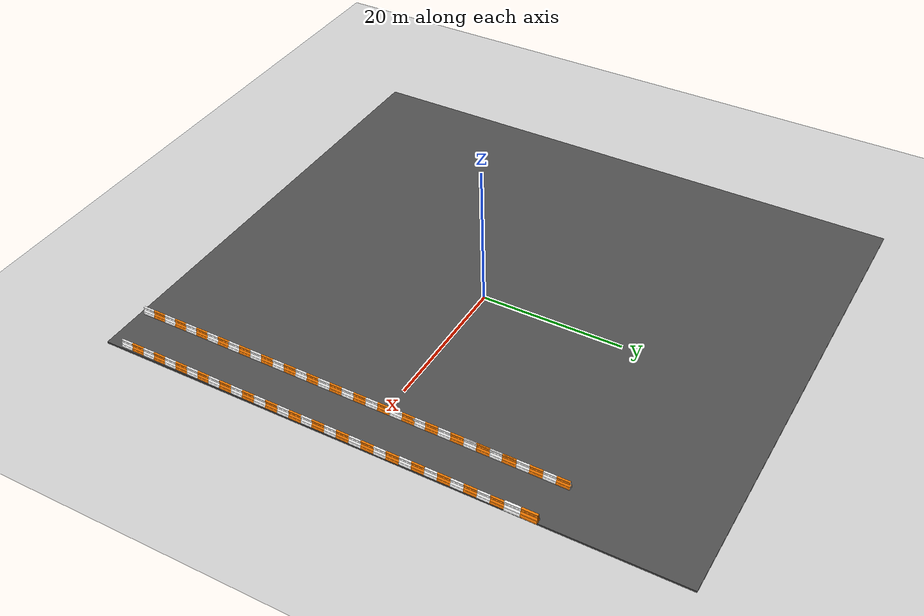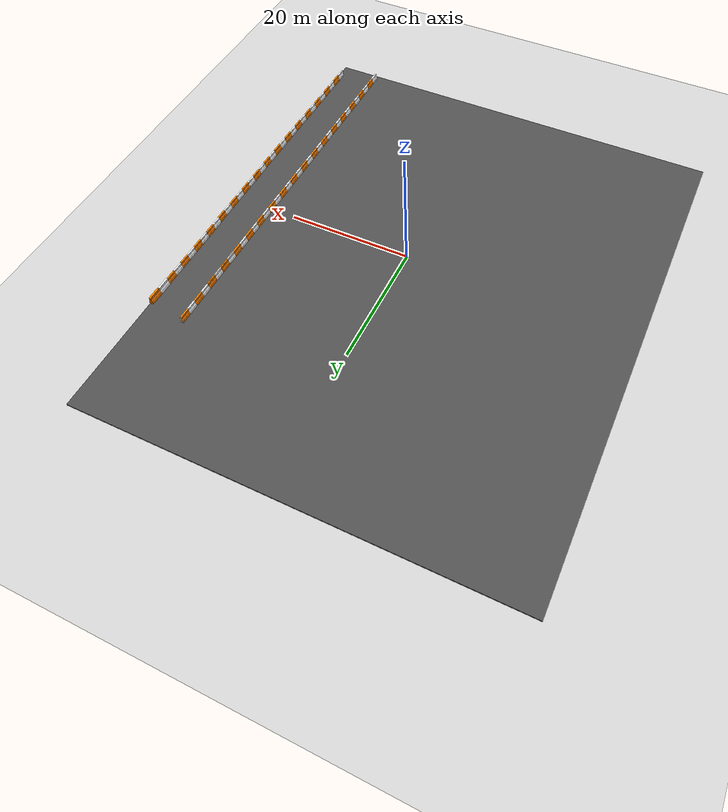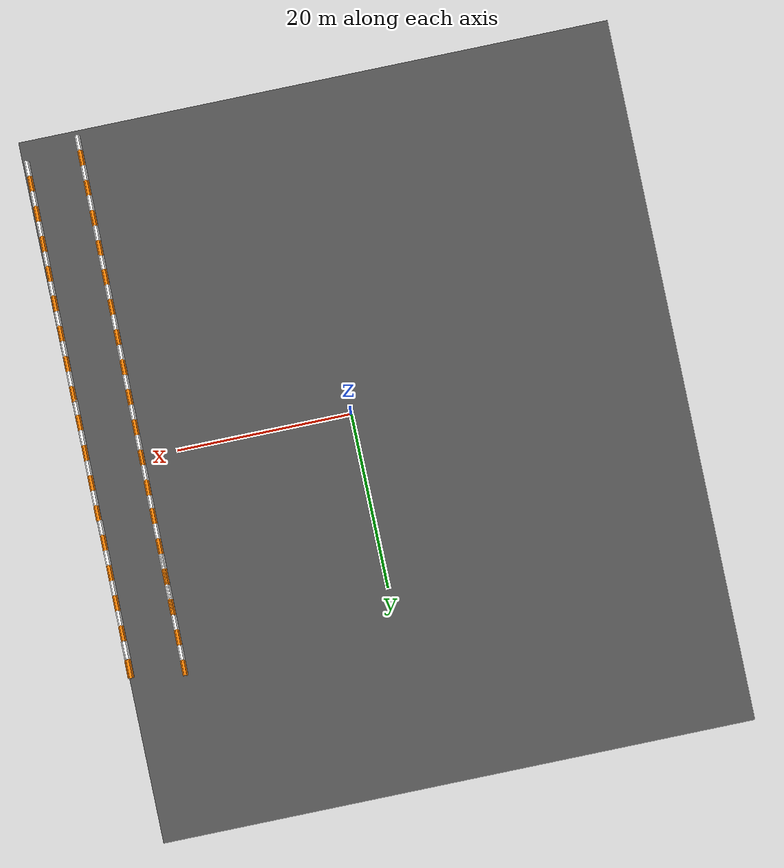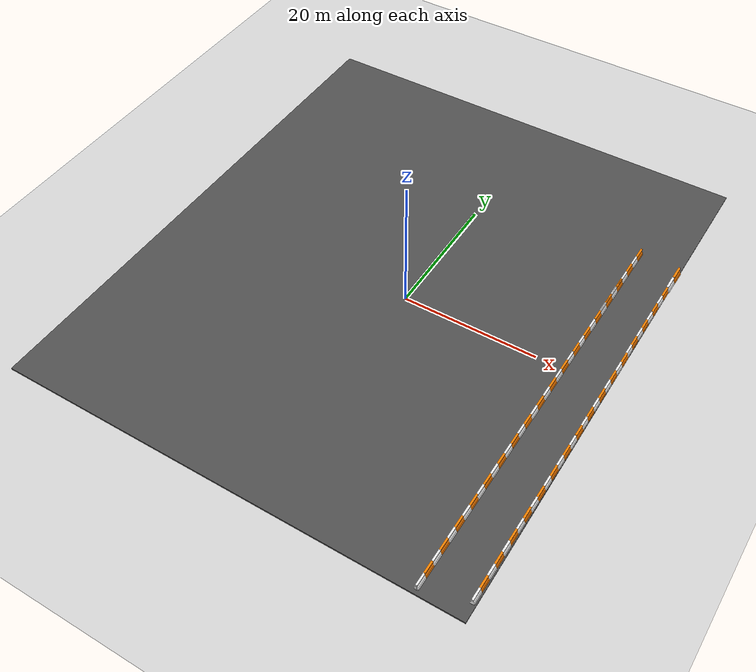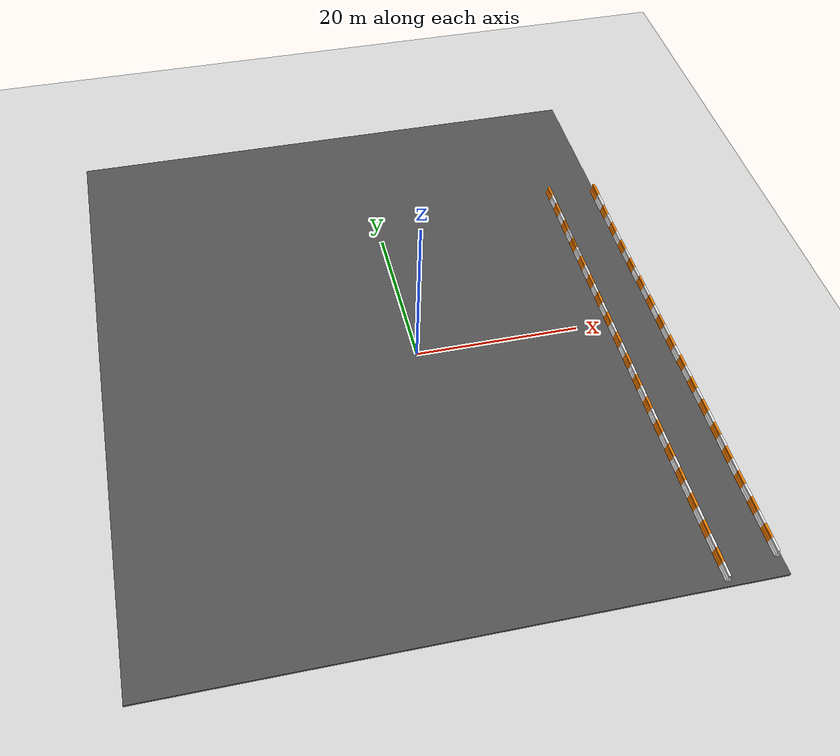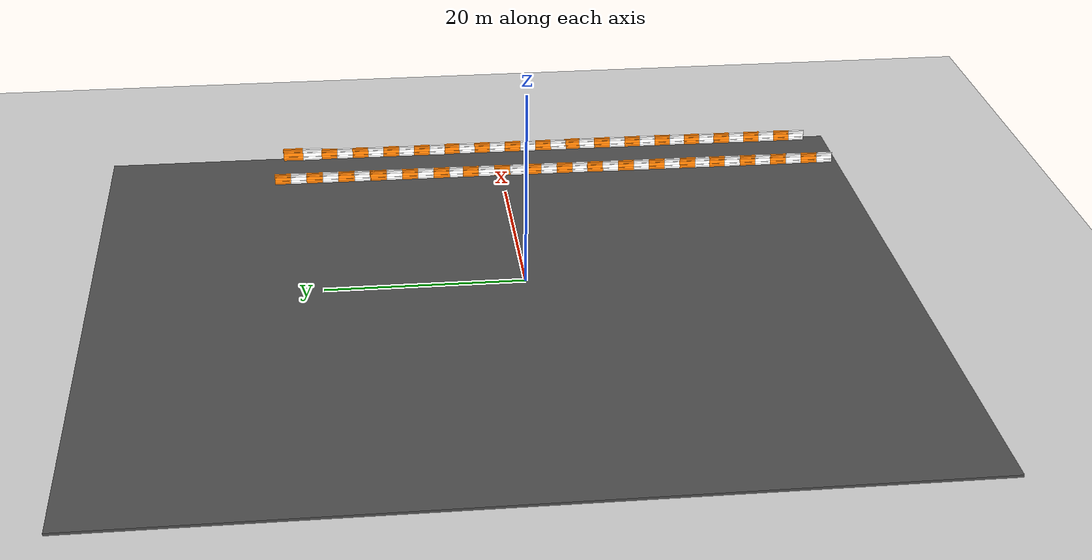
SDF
<sdf version="1.7">
 <world name="default">
  <light name="sun" type="directional">
   <pose>0 0 10 0 -0 0</pose>
   <diffuse>0.8 0.8 0.8 1</diffuse>
   <specular>0.2 0.2 0.2 1</specular>
   <attenuation>
    <range>1000</range>
    <constant>0.9</constant>
    <linear>0.01</linear>
    <quadratic>0.001</quadratic>
   </attenuation>
   <direction>-0.5 0.1 -0.9</direction>
   <spot><inner_angle>0</inner_angle><outer_angle>0</outer_angle><falloff>0</falloff></spot>
  </light>
  <model name="ground_plane">
   <static>1</static>
   <link name="link">
    <collision name="collision">
     <geometry><plane><normal>0 0 1</normal><size>100 100</size></plane></geometry>
     <surface><friction><ode><mu>100</mu><mu2>50</mu2></ode></friction></surface>
    </collision>
    <visual name="visual">
     <cast_shadows>0</cast_shadows>
     <geometry><plane><normal>0 0 1</normal><size>100 100</size></plane></geometry>
     <material>
      <script><uri>file://media/materials/scripts/gazebo.material</uri><name>Gazebo/Grey</name></script>
     </material>
    </visual>
   </link>
  </model>
  <gravity>0 0 -9.8</gravity>
  <magnetic_field>6e-06 2.3e-05 -4.2e-05</magnetic_field>
  <atmosphere type="adiabatic"/>
  <physics type="ode">
   <max_step_size>0.001</max_step_size>
   <real_time_factor>1</real_time_factor>
   <real_time_update_rate>1000</real_time_update_rate>
  </physics>
  <scene><ambient>0.4 0.4 0.4 1</ambient><background>0.7 0.7 0.7 1</background><shadows>1</shadows></scene>
  <spherical_coordinates>
   <surface_model>EARTH_WGS84</surface_model>
   <latitude_deg>0</latitude_deg>
   <longitude_deg>0</longitude_deg>
   <elevation>0</elevation>
   <heading_deg>0</heading_deg>
  </spherical_coordinates>
  <audio><device>default</device></audio>
  <model name="harita_genis">
   <static>1</static>
   <link name="link">
    <collision name="collision">
     <geometry><box><size>68.028 80.769 0.3</size></box></geometry>
     <surface><friction><ode><mu>1</mu><mu2>1</mu2></ode></friction></surface>
    </collision>
    <visual name="visual">
     <cast_shadows>0</cast_shadows>
     <geometry><box><size>68.028 80.769 0.3</size></box></geometry>
     <material>
      <script>
       <uri>model://harita_genis/materials/scripts</uri>
       <uri>model://harita_genis/materials/textures</uri>
       <name>vrc/asphalt</name>
      </script>
     </material>
    </visual>
   </link>
   <pose>-3.43532 2.57809 0 0 -0 0</pose>
  </model>
  <model name="bariyer">
   <model name="drc_practice_organge_jersey_barrier">
    <static>1</static>
    <link name="link">
     <visual name="visual">
      <geometry>
       <mesh><uri>model://drc_practice_orange_jersey_barrier/meshes/jersey_barrier.dae</uri></mesh>
      </geometry>
     </visual>
     <collision name="collision">
      <geometry>
       <mesh><uri>model://drc_practice_orange_jersey_barrier/meshes/jersey_barrier.dae</uri></mesh>
      </geometry>
     </collision>
    </link>
    <pose>0.039146 6.07746 0 0 -0 0</pose>
   </model>
   <model name="drc_practice_organge_jersey_barrier_0">
    <static>1</static>
    <link name="link">
     <visual name="visual">
      <geometry>
       <mesh><uri>model://drc_practice_orange_jersey_barrier/meshes/jersey_barrier.dae</uri></mesh>
      </geometry>
     </visual>
     <collision name="collision">
      <geometry>
       <mesh><uri>model://drc_practice_orange_jersey_barrier/meshes/jersey_barrier.dae</uri></mesh>
      </geometry>
     </collision>
    </link>
    <pose>0.010612 2.60696 0 0 -0 0</pose>
   </model>
   <model name="drc_practice_organge_jersey_barrier_1">
    <static>1</static>
    <link name="link">
     <visual name="visual">
      <geometry>
       <mesh><uri>model://drc_practice_orange_jersey_barrier/meshes/jersey_barrier.dae</uri></mesh>
      </geometry>
     </visual>
     <collision name="collision">
      <geometry>
       <mesh><uri>model://drc_practice_orange_jersey_barrier/meshes/jersey_barrier.dae</uri></mesh>
      </geometry>
     </collision>
    </link>
    <pose>-0.00676 -0.866958 0 0 -0 0</pose>
   </model>
   <model name="drc_practice_organge_jersey_barrier_2">
    <static>1</static>
    <link name="link">
     <visual name="visual">
      <geometry>
       <mesh><uri>model://drc_practice_orange_jersey_barrier/meshes/jersey_barrier.dae</uri></mesh>
      </geometry>
     </visual>
     <collision name="collision">
      <geometry>
       <mesh><uri>model://drc_practice_orange_jersey_barrier/meshes/jersey_barrier.dae</uri></mesh>
      </geometry>
     </collision>
    </link>
    <pose>-0.024719 -4.34424 0 0 -0 0</pose>
   </model>
   <model name="drc_practice_white_jersey_barrier">
    <static>1</static>
    <link name="link">
     <visual name="visual">
      <geometry>
       <mesh><uri>model://drc_practice_white_jersey_barrier/meshes/jersey_barrier.dae</uri></mesh>
      </geometry>
     </visual>
     <collision name="collision">
      <geometry>
       <mesh><uri>model://drc_practice_white_jersey_barrier/meshes/jersey_barrier.dae</uri></mesh>
      </geometry>
     </collision>
    </link>
    <pose>0.023224 4.34423 0 0 -0 0</pose>
   </model>
   <model name="drc_practice_white_jersey_barrier_0">
    <static>1</static>
    <link name="link">
     <visual name="visual">
      <geometry>
       <mesh><uri>model://drc_practice_white_jersey_barrier/meshes/jersey_barrier.dae</uri></mesh>
      </geometry>
     </visual>
     <collision name="collision">
      <geometry>
       <mesh><uri>model://drc_practice_white_jersey_barrier/meshes/jersey_barrier.dae</uri></mesh>
      </geometry>
     </collision>
    </link>
    <pose>0.002601 0.871127 0 0 -0 0</pose>
   </model>
   <model name="drc_practice_white_jersey_barrier_1">
    <static>1</static>
    <link name="link">
     <visual name="visual">
      <geometry>
       <mesh><uri>model://drc_practice_white_jersey_barrier/meshes/jersey_barrier.dae</uri></mesh>
      </geometry>
     </visual>
     <collision name="collision">
      <geometry>
       <mesh><uri>model://drc_practice_white_jersey_barrier/meshes/jersey_barrier.dae</uri></mesh>
      </geometry>
     </collision>
    </link>
    <pose>-0.014946 -2.60453 0 0 -0 0</pose>
   </model>
   <model name="drc_practice_white_jersey_barrier_2">
    <static>1</static>
    <link name="link">
     <visual name="visual">
      <geometry>
       <mesh><uri>model://drc_practice_white_jersey_barrier/meshes/jersey_barrier.dae</uri></mesh>
      </geometry>
     </visual>
     <collision name="collision">
      <geometry>
       <mesh><uri>model://drc_practice_white_jersey_barrier/meshes/jersey_barrier.dae</uri></mesh>
      </geometry>
     </collision>
    </link>
    <pose>-0.029114 -6.084 0 0 -0 0</pose>
   </model>
   <static>0</static>
   <pose>30.1325 -28.547 0.140526 0 -0 0</pose>
  </model>
  <model name="bariyer_clone">
   <model name="drc_practice_organge_jersey_barrier">
    <static>1</static>
    <link name="link">
     <visual name="visual">
      <geometry>
       <mesh><uri>model://drc_practice_orange_jersey_barrier/meshes/jersey_barrier.dae</uri></mesh>
      </geometry>
     </visual>
     <collision name="collision">
      <geometry>
       <mesh><uri>model://drc_practice_orange_jersey_barrier/meshes/jersey_barrier.dae</uri></mesh>
      </geometry>
     </collision>
    </link>
    <pose>0.039146 6.07746 0 0 -0 0</pose>
   </model>
   <model name="drc_practice_organge_jersey_barrier_0">
    <static>1</static>
    <link name="link">
     <visual name="visual">
      <geometry>
       <mesh><uri>model://drc_practice_orange_jersey_barrier/meshes/jersey_barrier.dae</uri></mesh>
      </geometry>
     </visual>
     <collision name="collision">
      <geometry>
       <mesh><uri>model://drc_practice_orange_jersey_barrier/meshes/jersey_barrier.dae</uri></mesh>
      </geometry>
     </collision>
    </link>
    <pose>0.010612 2.60696 0 0 -0 0</pose>
   </model>
   <model name="drc_practice_organge_jersey_barrier_1">
    <static>1</static>
    <link name="link">
     <visual name="visual">
      <geometry>
       <mesh><uri>model://drc_practice_orange_jersey_barrier/meshes/jersey_barrier.dae</uri></mesh>
      </geometry>
     </visual>
     <collision name="collision">
      <geometry>
       <mesh><uri>model://drc_practice_orange_jersey_barrier/meshes/jersey_barrier.dae</uri></mesh>
      </geometry>
     </collision>
    </link>
    <pose>-0.00676 -0.866958 0 0 -0 0</pose>
   </model>
   <model name="drc_practice_organge_jersey_barrier_2">
    <static>1</static>
    <link name="link">
     <visual name="visual">
      <geometry>
       <mesh><uri>model://drc_practice_orange_jersey_barrier/meshes/jersey_barrier.dae</uri></mesh>
      </geometry>
     </visual>
     <collision name="collision">
      <geometry>
       <mesh><uri>model://drc_practice_orange_jersey_barrier/meshes/jersey_barrier.dae</uri></mesh>
      </geometry>
     </collision>
    </link>
    <pose>-0.024719 -4.34424 0 0 -0 0</pose>
   </model>
   <model name="drc_practice_white_jersey_barrier">
    <static>1</static>
    <link name="link">
     <visual name="visual">
      <geometry>
       <mesh><uri>model://drc_practice_white_jersey_barrier/meshes/jersey_barrier.dae</uri></mesh>
      </geometry>
     </visual>
     <collision name="collision">
      <geometry>
       <mesh><uri>model://drc_practice_white_jersey_barrier/meshes/jersey_barrier.dae</uri></mesh>
      </geometry>
     </collision>
    </link>
    <pose>0.023224 4.34423 0 0 -0 0</pose>
   </model>
   <model name="drc_practice_white_jersey_barrier_0">
    <static>1</static>
    <link name="link">
     <visual name="visual">
      <geometry>
       <mesh><uri>model://drc_practice_white_jersey_barrier/meshes/jersey_barrier.dae</uri></mesh>
      </geometry>
     </visual>
     <collision name="collision">
      <geometry>
       <mesh><uri>model://drc_practice_white_jersey_barrier/meshes/jersey_barrier.dae</uri></mesh>
      </geometry>
     </collision>
    </link>
    <pose>0.002601 0.871127 0 0 -0 0</pose>
   </model>
   <model name="drc_practice_white_jersey_barrier_1">
    <static>1</static>
    <link name="link">
     <visual name="visual">
      <geometry>
       <mesh><uri>model://drc_practice_white_jersey_barrier/meshes/jersey_barrier.dae</uri></mesh>
      </geometry>
     </visual>
     <collision name="collision">
      <geometry>
       <mesh><uri>model://drc_practice_white_jersey_barrier/meshes/jersey_barrier.dae</uri></mesh>
      </geometry>
     </collision>
    </link>
    <pose>-0.014946 -2.60453 0 0 -0 0</pose>
   </model>
   <model name="drc_practice_white_jersey_barrier_2">
    <static>1</static>
    <link name="link">
     <visual name="visual">
      <geometry>
       <mesh><uri>model://drc_practice_white_jersey_barrier/meshes/jersey_barrier.dae</uri></mesh>
      </geometry>
     </visual>
     <collision name="collision">
      <geometry>
       <mesh><uri>model://drc_practice_white_jersey_barrier/meshes/jersey_barrier.dae</uri></mesh>
      </geometry>
     </collision>
    </link>
    <pose>-0.029114 -6.084 0 0 -0 0</pose>
   </model>
   <static>0</static>
   <pose>30.2426 -14.7243 0.15401 0 -0 0</pose>
  </model>
  <model name="bariyer_clone_clone">
   <model name="drc_practice_organge_jersey_barrier">
    <static>1</static>
    <link name="link">
     <visual name="visual">
      <geometry>
       <mesh><uri>model://drc_practice_orange_jersey_barrier/meshes/jersey_barrier.dae</uri></mesh>
      </geometry>
     </visual>
     <collision name="collision">
      <geometry>
       <mesh><uri>model://drc_practice_orange_jersey_barrier/meshes/jersey_barrier.dae</uri></mesh>
      </geometry>
     </collision>
    </link>
    <pose>0.039146 6.07746 0 0 -0 0</pose>
   </model>
   <model name="drc_practice_organge_jersey_barrier_0">
    <static>1</static>
    <link name="link">
     <visual name="visual">
      <geometry>
       <mesh><uri>model://drc_practice_orange_jersey_barrier/meshes/jersey_barrier.dae</uri></mesh>
      </geometry>
     </visual>
     <collision name="collision">
      <geometry>
       <mesh><uri>model://drc_practice_orange_jersey_barrier/meshes/jersey_barrier.dae</uri></mesh>
      </geometry>
     </collision>
    </link>
    <pose>0.010612 2.60696 0 0 -0 0</pose>
   </model>
   <model name="drc_practice_organge_jersey_barrier_1">
    <static>1</static>
    <link name="link">
     <visual name="visual">
      <geometry>
       <mesh><uri>model://drc_practice_orange_jersey_barrier/meshes/jersey_barrier.dae</uri></mesh>
      </geometry>
     </visual>
     <collision name="collision">
      <geometry>
       <mesh><uri>model://drc_practice_orange_jersey_barrier/meshes/jersey_barrier.dae</uri></mesh>
      </geometry>
     </collision>
    </link>
    <pose>-0.00676 -0.866958 0 0 -0 0</pose>
   </model>
   <model name="drc_practice_organge_jersey_barrier_2">
    <static>1</static>
    <link name="link">
     <visual name="visual">
      <geometry>
       <mesh><uri>model://drc_practice_orange_jersey_barrier/meshes/jersey_barrier.dae</uri></mesh>
      </geometry>
     </visual>
     <collision name="collision">
      <geometry>
       <mesh><uri>model://drc_practice_orange_jersey_barrier/meshes/jersey_barrier.dae</uri></mesh>
      </geometry>
     </collision>
    </link>
    <pose>-0.024719 -4.34424 0 0 -0 0</pose>
   </model>
   <model name="drc_practice_white_jersey_barrier">
    <static>1</static>
    <link name="link">
     <visual name="visual">
      <geometry>
       <mesh><uri>model://drc_practice_white_jersey_barrier/meshes/jersey_barrier.dae</uri></mesh>
      </geometry>
     </visual>
     <collision name="collision">
      <geometry>
       <mesh><uri>model://drc_practice_white_jersey_barrier/meshes/jersey_barrier.dae</uri></mesh>
      </geometry>
     </collision>
    </link>
    <pose>0.023224 4.34423 0 0 -0 0</pose>
   </model>
   <model name="drc_practice_white_jersey_barrier_0">
    <static>1</static>
    <link name="link">
     <visual name="visual">
      <geometry>
       <mesh><uri>model://drc_practice_white_jersey_barrier/meshes/jersey_barrier.dae</uri></mesh>
      </geometry>
     </visual>
     <collision name="collision">
      <geometry>
       <mesh><uri>model://drc_practice_white_jersey_barrier/meshes/jersey_barrier.dae</uri></mesh>
      </geometry>
     </collision>
    </link>
    <pose>0.002601 0.871127 0 0 -0 0</pose>
   </model>
   <model name="drc_practice_white_jersey_barrier_1">
    <static>1</static>
    <link name="link">
     <visual name="visual">
      <geometry>
       <mesh><uri>model://drc_practice_white_jersey_barrier/meshes/jersey_barrier.dae</uri></mesh>
      </geometry>
     </visual>
     <collision name="collision">
      <geometry>
       <mesh><uri>model://drc_practice_white_jersey_barrier/meshes/jersey_barrier.dae</uri></mesh>
      </geometry>
     </collision>
    </link>
    <pose>-0.014946 -2.60453 0 0 -0 0</pose>
   </model>
   <model name="drc_practice_white_jersey_barrier_2">
    <static>1</static>
    <link name="link">
     <visual name="visual">
      <geometry>
       <mesh><uri>model://drc_practice_white_jersey_barrier/meshes/jersey_barrier.dae</uri></mesh>
      </geometry>
     </visual>
     <collision name="collision">
      <geometry>
       <mesh><uri>model://drc_practice_white_jersey_barrier/meshes/jersey_barrier.dae</uri></mesh>
      </geometry>
     </collision>
    </link>
    <pose>-0.029114 -6.084 0 0 -0 0</pose>
   </model>
   <static>0</static>
   <pose>30.2767 -0.98149 0.140546 0 -0 0</pose>
  </model>
  <model name="bariyer_clone_clone_0">
   <model name="drc_practice_organge_jersey_barrier">
    <static>1</static>
    <link name="link">
     <visual name="visual">
      <geometry>
       <mesh><uri>model://drc_practice_orange_jersey_barrier/meshes/jersey_barrier.dae</uri></mesh>
      </geometry>
     </visual>
     <collision name="collision">
      <geometry>
       <mesh><uri>model://drc_practice_orange_jersey_barrier/meshes/jersey_barrier.dae</uri></mesh>
      </geometry>
     </collision>
    </link>
    <pose>0.039146 6.07746 0 0 -0 0</pose>
   </model>
   <model name="drc_practice_organge_jersey_barrier_0">
    <static>1</static>
    <link name="link">
     <visual name="visual">
      <geometry>
       <mesh><uri>model://drc_practice_orange_jersey_barrier/meshes/jersey_barrier.dae</uri></mesh>
      </geometry>
     </visual>
     <collision name="collision">
      <geometry>
       <mesh><uri>model://drc_practice_orange_jersey_barrier/meshes/jersey_barrier.dae</uri></mesh>
      </geometry>
     </collision>
    </link>
    <pose>0.010612 2.60696 0 0 -0 0</pose>
   </model>
   <model name="drc_practice_organge_jersey_barrier_1">
    <static>1</static>
    <link name="link">
     <visual name="visual">
      <geometry>
       <mesh><uri>model://drc_practice_orange_jersey_barrier/meshes/jersey_barrier.dae</uri></mesh>
      </geometry>
     </visual>
     <collision name="collision">
      <geometry>
       <mesh><uri>model://drc_practice_orange_jersey_barrier/meshes/jersey_barrier.dae</uri></mesh>
      </geometry>
     </collision>
    </link>
    <pose>-0.00676 -0.866958 0 0 -0 0</pose>
   </model>
   <model name="drc_practice_organge_jersey_barrier_2">
    <static>1</static>
    <link name="link">
     <visual name="visual">
      <geometry>
       <mesh><uri>model://drc_practice_orange_jersey_barrier/meshes/jersey_barrier.dae</uri></mesh>
      </geometry>
     </visual>
     <collision name="collision">
      <geometry>
       <mesh><uri>model://drc_practice_orange_jersey_barrier/meshes/jersey_barrier.dae</uri></mesh>
      </geometry>
     </collision>
    </link>
    <pose>-0.024719 -4.34424 0 0 -0 0</pose>
   </model>
   <model name="drc_practice_white_jersey_barrier">
    <static>1</static>
    <link name="link">
     <visual name="visual">
      <geometry>
       <mesh><uri>model://drc_practice_white_jersey_barrier/meshes/jersey_barrier.dae</uri></mesh>
      </geometry>
     </visual>
     <collision name="collision">
      <geometry>
       <mesh><uri>model://drc_practice_white_jersey_barrier/meshes/jersey_barrier.dae</uri></mesh>
      </geometry>
     </collision>
    </link>
    <pose>0.023224 4.34423 0 0 -0 0</pose>
   </model>
   <model name="drc_practice_white_jersey_barrier_0">
    <static>1</static>
    <link name="link">
     <visual name="visual">
      <geometry>
       <mesh><uri>model://drc_practice_white_jersey_barrier/meshes/jersey_barrier.dae</uri></mesh>
      </geometry>
     </visual>
     <collision name="collision">
      <geometry>
       <mesh><uri>model://drc_practice_white_jersey_barrier/meshes/jersey_barrier.dae</uri></mesh>
      </geometry>
     </collision>
    </link>
    <pose>0.002601 0.871127 0 0 -0 0</pose>
   </model>
   <model name="drc_practice_white_jersey_barrier_1">
    <static>1</static>
    <link name="link">
     <visual name="visual">
      <geometry>
       <mesh><uri>model://drc_practice_white_jersey_barrier/meshes/jersey_barrier.dae</uri></mesh>
      </geometry>
     </visual>
     <collision name="collision">
      <geometry>
       <mesh><uri>model://drc_practice_white_jersey_barrier/meshes/jersey_barrier.dae</uri></mesh>
      </geometry>
     </collision>
    </link>
    <pose>-0.014946 -2.60453 0 0 -0 0</pose>
   </model>
   <model name="drc_practice_white_jersey_barrier_2">
    <static>1</static>
    <link name="link">
     <visual name="visual">
      <geometry>
       <mesh><uri>model://drc_practice_white_jersey_barrier/meshes/jersey_barrier.dae</uri></mesh>
      </geometry>
     </visual>
     <collision name="collision">
      <geometry>
       <mesh><uri>model://drc_practice_white_jersey_barrier/meshes/jersey_barrier.dae</uri></mesh>
      </geometry>
     </collision>
    </link>
    <pose>-0.029114 -6.084 0 0 -0 0</pose>
   </model>
   <static>0</static>
   <pose>30.2849 12.8389 0.140546 0 -0 0</pose>
  </model>
  <model name="bariyer_clone_0">
   <model name="drc_practice_organge_jersey_barrier">
    <static>1</static>
    <link name="link">
     <visual name="visual">
      <geometry>
       <mesh><uri>model://drc_practice_orange_jersey_barrier/meshes/jersey_barrier.dae</uri></mesh>
      </geometry>
     </visual>
     <collision name="collision">
      <geometry>
       <mesh><uri>model://drc_practice_orange_jersey_barrier/meshes/jersey_barrier.dae</uri></mesh>
      </geometry>
     </collision>
    </link>
    <pose>0.039146 6.07746 0 0 -0 0</pose>
   </model>
   <model name="drc_practice_organge_jersey_barrier_0">
    <static>1</static>
    <link name="link">
     <visual name="visual">
      <geometry>
       <mesh><uri>model://drc_practice_orange_jersey_barrier/meshes/jersey_barrier.dae</uri></mesh>
      </geometry>
     </visual>
     <collision name="collision">
      <geometry>
       <mesh><uri>model://drc_practice_orange_jersey_barrier/meshes/jersey_barrier.dae</uri></mesh>
      </geometry>
     </collision>
    </link>
    <pose>0.010612 2.60696 0 0 -0 0</pose>
   </model>
   <model name="drc_practice_organge_jersey_barrier_1">
    <static>1</static>
    <link name="link">
     <visual name="visual">
      <geometry>
       <mesh><uri>model://drc_practice_orange_jersey_barrier/meshes/jersey_barrier.dae</uri></mesh>
      </geometry>
     </visual>
     <collision name="collision">
      <geometry>
       <mesh><uri>model://drc_practice_orange_jersey_barrier/meshes/jersey_barrier.dae</uri></mesh>
      </geometry>
     </collision>
    </link>
    <pose>-0.00676 -0.866958 0 0 -0 0</pose>
   </model>
   <model name="drc_practice_organge_jersey_barrier_2">
    <static>1</static>
    <link name="link">
     <visual name="visual">
      <geometry>
       <mesh><uri>model://drc_practice_orange_jersey_barrier/meshes/jersey_barrier.dae</uri></mesh>
      </geometry>
     </visual>
     <collision name="collision">
      <geometry>
       <mesh><uri>model://drc_practice_orange_jersey_barrier/meshes/jersey_barrier.dae</uri></mesh>
      </geometry>
     </collision>
    </link>
    <pose>-0.024719 -4.34424 0 0 -0 0</pose>
   </model>
   <model name="drc_practice_white_jersey_barrier">
    <static>1</static>
    <link name="link">
     <visual name="visual">
      <geometry>
       <mesh><uri>model://drc_practice_white_jersey_barrier/meshes/jersey_barrier.dae</uri></mesh>
      </geometry>
     </visual>
     <collision name="collision">
      <geometry>
       <mesh><uri>model://drc_practice_white_jersey_barrier/meshes/jersey_barrier.dae</uri></mesh>
      </geometry>
     </collision>
    </link>
    <pose>0.023224 4.34423 0 0 -0 0</pose>
   </model>
   <model name="drc_practice_white_jersey_barrier_0">
    <static>1</static>
    <link name="link">
     <visual name="visual">
      <geometry>
       <mesh><uri>model://drc_practice_white_jersey_barrier/meshes/jersey_barrier.dae</uri></mesh>
      </geometry>
     </visual>
     <collision name="collision">
      <geometry>
       <mesh><uri>model://drc_practice_white_jersey_barrier/meshes/jersey_barrier.dae</uri></mesh>
      </geometry>
     </collision>
    </link>
    <pose>0.002601 0.871127 0 0 -0 0</pose>
   </model>
   <model name="drc_practice_white_jersey_barrier_1">
    <static>1</static>
    <link name="link">
     <visual name="visual">
      <geometry>
       <mesh><uri>model://drc_practice_white_jersey_barrier/meshes/jersey_barrier.dae</uri></mesh>
      </geometry>
     </visual>
     <collision name="collision">
      <geometry>
       <mesh><uri>model://drc_practice_white_jersey_barrier/meshes/jersey_barrier.dae</uri></mesh>
      </geometry>
     </collision>
    </link>
    <pose>-0.014946 -2.60453 0 0 -0 0</pose>
   </model>
   <model name="drc_practice_white_jersey_barrier_2">
    <static>1</static>
    <link name="link">
     <visual name="visual">
      <geometry>
       <mesh><uri>model://drc_practice_white_jersey_barrier/meshes/jersey_barrier.dae</uri></mesh>
      </geometry>
     </visual>
     <collision name="collision">
      <geometry>
       <mesh><uri>model://drc_practice_white_jersey_barrier/meshes/jersey_barrier.dae</uri></mesh>
      </geometry>
     </collision>
    </link>
    <pose>-0.029114 -6.084 0 0 -0 0</pose>
   </model>
   <static>0</static>
   <pose>23.9604 -30.2701 0.140526 0 -0 0</pose>
  </model>
  <model name="bariyer_clone_1">
   <model name="drc_practice_organge_jersey_barrier">
    <static>1</static>
    <link name="link">
     <visual name="visual">
      <geometry>
       <mesh><uri>model://drc_practice_orange_jersey_barrier/meshes/jersey_barrier.dae</uri></mesh>
      </geometry>
     </visual>
     <collision name="collision">
      <geometry>
       <mesh><uri>model://drc_practice_orange_jersey_barrier/meshes/jersey_barrier.dae</uri></mesh>
      </geometry>
     </collision>
    </link>
    <pose>0.039146 6.07746 0 0 -0 0</pose>
   </model>
   <model name="drc_practice_organge_jersey_barrier_0">
    <static>1</static>
    <link name="link">
     <visual name="visual">
      <geometry>
       <mesh><uri>model://drc_practice_orange_jersey_barrier/meshes/jersey_barrier.dae</uri></mesh>
      </geometry>
     </visual>
     <collision name="collision">
      <geometry>
       <mesh><uri>model://drc_practice_orange_jersey_barrier/meshes/jersey_barrier.dae</uri></mesh>
      </geometry>
     </collision>
    </link>
    <pose>0.010612 2.60696 0 0 -0 0</pose>
   </model>
   <model name="drc_practice_organge_jersey_barrier_1">
    <static>1</static>
    <link name="link">
     <visual name="visual">
      <geometry>
       <mesh><uri>model://drc_practice_orange_jersey_barrier/meshes/jersey_barrier.dae</uri></mesh>
      </geometry>
     </visual>
     <collision name="collision">
      <geometry>
       <mesh><uri>model://drc_practice_orange_jersey_barrier/meshes/jersey_barrier.dae</uri></mesh>
      </geometry>
     </collision>
    </link>
    <pose>-0.00676 -0.866958 0 0 -0 0</pose>
   </model>
   <model name="drc_practice_organge_jersey_barrier_2">
    <static>1</static>
    <link name="link">
     <visual name="visual">
      <geometry>
       <mesh><uri>model://drc_practice_orange_jersey_barrier/meshes/jersey_barrier.dae</uri></mesh>
      </geometry>
     </visual>
     <collision name="collision">
      <geometry>
       <mesh><uri>model://drc_practice_orange_jersey_barrier/meshes/jersey_barrier.dae</uri></mesh>
      </geometry>
     </collision>
    </link>
    <pose>-0.024719 -4.34424 0 0 -0 0</pose>
   </model>
   <model name="drc_practice_white_jersey_barrier">
    <static>1</static>
    <link name="link">
     <visual name="visual">
      <geometry>
       <mesh><uri>model://drc_practice_white_jersey_barrier/meshes/jersey_barrier.dae</uri></mesh>
      </geometry>
     </visual>
     <collision name="collision">
      <geometry>
       <mesh><uri>model://drc_practice_white_jersey_barrier/meshes/jersey_barrier.dae</uri></mesh>
      </geometry>
     </collision>
    </link>
    <pose>0.023224 4.34423 0 0 -0 0</pose>
   </model>
   <model name="drc_practice_white_jersey_barrier_0">
    <static>1</static>
    <link name="link">
     <visual name="visual">
      <geometry>
       <mesh><uri>model://drc_practice_white_jersey_barrier/meshes/jersey_barrier.dae</uri></mesh>
      </geometry>
     </visual>
     <collision name="collision">
      <geometry>
       <mesh><uri>model://drc_practice_white_jersey_barrier/meshes/jersey_barrier.dae</uri></mesh>
      </geometry>
     </collision>
    </link>
    <pose>0.002601 0.871127 0 0 -0 0</pose>
   </model>
   <model name="drc_practice_white_jersey_barrier_1">
    <static>1</static>
    <link name="link">
     <visual name="visual">
      <geometry>
       <mesh><uri>model://drc_practice_white_jersey_barrier/meshes/jersey_barrier.dae</uri></mesh>
      </geometry>
     </visual>
     <collision name="collision">
      <geometry>
       <mesh><uri>model://drc_practice_white_jersey_barrier/meshes/jersey_barrier.dae</uri></mesh>
      </geometry>
     </collision>
    </link>
    <pose>-0.014946 -2.60453 0 0 -0 0</pose>
   </model>
   <model name="drc_practice_white_jersey_barrier_2">
    <static>1</static>
    <link name="link">
     <visual name="visual">
      <geometry>
       <mesh><uri>model://drc_practice_white_jersey_barrier/meshes/jersey_barrier.dae</uri></mesh>
      </geometry>
     </visual>
     <collision name="collision">
      <geometry>
       <mesh><uri>model://drc_practice_white_jersey_barrier/meshes/jersey_barrier.dae</uri></mesh>
      </geometry>
     </collision>
    </link>
    <pose>-0.029114 -6.084 0 0 -0 0</pose>
   </model>
   <static>0</static>
   <pose>24.2274 11.0225 0.140526 0 -0 0</pose>
  </model>
  <model name="drc_practice_white_jersey_barrier_3_clone_clone_0_clone_clone_0_clone">
   <static>1</static>
   <link name="link">
    <visual name="visual">
     <geometry>
      <mesh>
       <uri>model://drc_practice_white_jersey_barrier/meshes/jersey_barrier.dae</uri>
       <scale>1.2 1.2 1.2</scale>
      </mesh>
     </geometry>
    </visual>
    <collision name="collision">
     <geometry>
      <mesh>
       <uri>model://drc_practice_white_jersey_barrier/meshes/jersey_barrier.dae</uri>
       <scale>1.2 1.2 1.2</scale>
      </mesh>
     </geometry>
    </collision>
   </link>
   <pose>30.3324 20.8581 0.082229 0 -0 0.008461</pose>
  </model>
  <model name="drc_practice_organge_jersey_barrier_3_clone_clone_0">
   <static>1</static>
   <link name="link">
    <visual name="visual">
     <geometry>
      <mesh>
       <uri>model://drc_practice_orange_jersey_barrier/meshes/jersey_barrier.dae</uri>
       <scale>1.2 1.2 1.2</scale>
      </mesh>
     </geometry>
    </visual>
    <collision name="collision">
     <geometry>
      <mesh>
       <uri>model://drc_practice_orange_jersey_barrier/meshes/jersey_barrier.dae</uri>
       <scale>1.2 1.2 1.2</scale>
      </mesh>
     </geometry>
    </collision>
   </link>
   <pose>30.3629 22.9549 0.121946 0 -0 3.13954</pose>
  </model>
  <model name="bariyer_clone_2_clone">
   <model name="drc_practice_organge_jersey_barrier">
    <static>1</static>
    <link name="link">
     <visual name="visual">
      <geometry>
       <mesh><uri>model://drc_practice_orange_jersey_barrier/meshes/jersey_barrier.dae</uri></mesh>
      </geometry>
     </visual>
     <collision name="collision">
      <geometry>
       <mesh><uri>model://drc_practice_orange_jersey_barrier/meshes/jersey_barrier.dae</uri></mesh>
      </geometry>
     </collision>
    </link>
    <pose>0.039146 6.07746 0 0 -0 0</pose>
   </model>
   <model name="drc_practice_organge_jersey_barrier_0">
    <static>1</static>
    <link name="link">
     <visual name="visual">
      <geometry>
       <mesh><uri>model://drc_practice_orange_jersey_barrier/meshes/jersey_barrier.dae</uri></mesh>
      </geometry>
     </visual>
     <collision name="collision">
      <geometry>
       <mesh><uri>model://drc_practice_orange_jersey_barrier/meshes/jersey_barrier.dae</uri></mesh>
      </geometry>
     </collision>
    </link>
    <pose>0.010612 2.60696 0 0 -0 0</pose>
   </model>
   <model name="drc_practice_organge_jersey_barrier_1">
    <static>1</static>
    <link name="link">
     <visual name="visual">
      <geometry>
       <mesh><uri>model://drc_practice_orange_jersey_barrier/meshes/jersey_barrier.dae</uri></mesh>
      </geometry>
     </visual>
     <collision name="collision">
      <geometry>
       <mesh><uri>model://drc_practice_orange_jersey_barrier/meshes/jersey_barrier.dae</uri></mesh>
      </geometry>
     </collision>
    </link>
    <pose>-0.00676 -0.866958 0 0 -0 0</pose>
   </model>
   <model name="drc_practice_organge_jersey_barrier_2">
    <static>1</static>
    <link name="link">
     <visual name="visual">
      <geometry>
       <mesh><uri>model://drc_practice_orange_jersey_barrier/meshes/jersey_barrier.dae</uri></mesh>
      </geometry>
     </visual>
     <collision name="collision">
      <geometry>
       <mesh><uri>model://drc_practice_orange_jersey_barrier/meshes/jersey_barrier.dae</uri></mesh>
      </geometry>
     </collision>
    </link>
    <pose>-0.024719 -4.34424 0 0 -0 0</pose>
   </model>
   <model name="drc_practice_white_jersey_barrier">
    <static>1</static>
    <link name="link">
     <visual name="visual">
      <geometry>
       <mesh><uri>model://drc_practice_white_jersey_barrier/meshes/jersey_barrier.dae</uri></mesh>
      </geometry>
     </visual>
     <collision name="collision">
      <geometry>
       <mesh><uri>model://drc_practice_white_jersey_barrier/meshes/jersey_barrier.dae</uri></mesh>
      </geometry>
     </collision>
    </link>
    <pose>0.023224 4.34423 0 0 -0 0</pose>
   </model>
   <model name="drc_practice_white_jersey_barrier_0">
    <static>1</static>
    <link name="link">
     <visual name="visual">
      <geometry>
       <mesh><uri>model://drc_practice_white_jersey_barrier/meshes/jersey_barrier.dae</uri></mesh>
      </geometry>
     </visual>
     <collision name="collision">
      <geometry>
       <mesh><uri>model://drc_practice_white_jersey_barrier/meshes/jersey_barrier.dae</uri></mesh>
      </geometry>
     </collision>
    </link>
    <pose>0.002601 0.871127 0 0 -0 0</pose>
   </model>
   <model name="drc_practice_white_jersey_barrier_1">
    <static>1</static>
    <link name="link">
     <visual name="visual">
      <geometry>
       <mesh><uri>model://drc_practice_white_jersey_barrier/meshes/jersey_barrier.dae</uri></mesh>
      </geometry>
     </visual>
     <collision name="collision">
      <geometry>
       <mesh><uri>model://drc_practice_white_jersey_barrier/meshes/jersey_barrier.dae</uri></mesh>
      </geometry>
     </collision>
    </link>
    <pose>-0.014946 -2.60453 0 0 -0 0</pose>
   </model>
   <model name="drc_practice_white_jersey_barrier_2">
    <static>1</static>
    <link name="link">
     <visual name="visual">
      <geometry>
       <mesh><uri>model://drc_practice_white_jersey_barrier/meshes/jersey_barrier.dae</uri></mesh>
      </geometry>
     </visual>
     <collision name="collision">
      <geometry>
       <mesh><uri>model://drc_practice_white_jersey_barrier/meshes/jersey_barrier.dae</uri></mesh>
      </geometry>
     </collision>
    </link>
    <pose>-0.029114 -6.084 0 0 -0 0</pose>
   </model>
   <static>0</static>
   <pose>24.0482 -16.509 0.140526 0 -0 0</pose>
  </model>
  <model name="bariyer_clone_1_clone">
   <model name="drc_practice_organge_jersey_barrier">
    <static>1</static>
    <link name="link">
     <visual name="visual">
      <geometry>
       <mesh><uri>model://drc_practice_orange_jersey_barrier/meshes/jersey_barrier.dae</uri></mesh>
      </geometry>
     </visual>
     <collision name="collision">
      <geometry>
       <mesh><uri>model://drc_practice_orange_jersey_barrier/meshes/jersey_barrier.dae</uri></mesh>
      </geometry>
     </collision>
    </link>
    <pose>0.039146 6.07746 0 0 -0 0</pose>
   </model>
   <model name="drc_practice_organge_jersey_barrier_0">
    <static>1</static>
    <link name="link">
     <visual name="visual">
      <geometry>
       <mesh><uri>model://drc_practice_orange_jersey_barrier/meshes/jersey_barrier.dae</uri></mesh>
      </geometry>
     </visual>
     <collision name="collision">
      <geometry>
       <mesh><uri>model://drc_practice_orange_jersey_barrier/meshes/jersey_barrier.dae</uri></mesh>
      </geometry>
     </collision>
    </link>
    <pose>0.010612 2.60696 0 0 -0 0</pose>
   </model>
   <model name="drc_practice_organge_jersey_barrier_1">
    <static>1</static>
    <link name="link">
     <visual name="visual">
      <geometry>
       <mesh><uri>model://drc_practice_orange_jersey_barrier/meshes/jersey_barrier.dae</uri></mesh>
      </geometry>
     </visual>
     <collision name="collision">
      <geometry>
       <mesh><uri>model://drc_practice_orange_jersey_barrier/meshes/jersey_barrier.dae</uri></mesh>
      </geometry>
     </collision>
    </link>
    <pose>-0.00676 -0.866958 0 0 -0 0</pose>
   </model>
   <model name="drc_practice_organge_jersey_barrier_2">
    <static>1</static>
    <link name="link">
     <visual name="visual">
      <geometry>
       <mesh><uri>model://drc_practice_orange_jersey_barrier/meshes/jersey_barrier.dae</uri></mesh>
      </geometry>
     </visual>
     <collision name="collision">
      <geometry>
       <mesh><uri>model://drc_practice_orange_jersey_barrier/meshes/jersey_barrier.dae</uri></mesh>
      </geometry>
     </collision>
    </link>
    <pose>-0.024719 -4.34424 0 0 -0 0</pose>
   </model>
   <model name="drc_practice_white_jersey_barrier">
    <static>1</static>
    <link name="link">
     <visual name="visual">
      <geometry>
       <mesh><uri>model://drc_practice_white_jersey_barrier/meshes/jersey_barrier.dae</uri></mesh>
      </geometry>
     </visual>
     <collision name="collision">
      <geometry>
       <mesh><uri>model://drc_practice_white_jersey_barrier/meshes/jersey_barrier.dae</uri></mesh>
      </geometry>
     </collision>
    </link>
    <pose>0.023224 4.34423 0 0 -0 0</pose>
   </model>
   <model name="drc_practice_white_jersey_barrier_0">
    <static>1</static>
    <link name="link">
     <visual name="visual">
      <geometry>
       <mesh><uri>model://drc_practice_white_jersey_barrier/meshes/jersey_barrier.dae</uri></mesh>
      </geometry>
     </visual>
     <collision name="collision">
      <geometry>
       <mesh><uri>model://drc_practice_white_jersey_barrier/meshes/jersey_barrier.dae</uri></mesh>
      </geometry>
     </collision>
    </link>
    <pose>0.002601 0.871127 0 0 -0 0</pose>
   </model>
   <model name="drc_practice_white_jersey_barrier_1">
    <static>1</static>
    <link name="link">
     <visual name="visual">
      <geometry>
       <mesh><uri>model://drc_practice_white_jersey_barrier/meshes/jersey_barrier.dae</uri></mesh>
      </geometry>
     </visual>
     <collision name="collision">
      <geometry>
       <mesh><uri>model://drc_practice_white_jersey_barrier/meshes/jersey_barrier.dae</uri></mesh>
      </geometry>
     </collision>
    </link>
    <pose>-0.014946 -2.60453 0 0 -0 0</pose>
   </model>
   <model name="drc_practice_white_jersey_barrier_2">
    <static>1</static>
    <link name="link">
     <visual name="visual">
      <geometry>
       <mesh><uri>model://drc_practice_white_jersey_barrier/meshes/jersey_barrier.dae</uri></mesh>
      </geometry>
     </visual>
     <collision name="collision">
      <geometry>
       <mesh><uri>model://drc_practice_white_jersey_barrier/meshes/jersey_barrier.dae</uri></mesh>
      </geometry>
     </collision>
    </link>
    <pose>-0.029114 -6.084 0 0 -0 0</pose>
   </model>
   <static>0</static>
   <pose>24.1497 -2.66018 0.140526 0 -0 0</pose>
  </model>
  <model name="bariyer_clone_1_clone_0">
   <model name="drc_practice_organge_jersey_barrier">
    <static>1</static>
    <link name="link">
     <visual name="visual">
      <geometry>
       <mesh><uri>model://drc_practice_orange_jersey_barrier/meshes/jersey_barrier.dae</uri></mesh>
      </geometry>
     </visual>
     <collision name="collision">
      <geometry>
       <mesh><uri>model://drc_practice_orange_jersey_barrier/meshes/jersey_barrier.dae</uri></mesh>
      </geometry>
     </collision>
    </link>
    <pose>0.039146 6.07746 0 0 -0 0</pose>
   </model>
   <model name="drc_practice_organge_jersey_barrier_0">
    <static>1</static>
    <link name="link">
     <visual name="visual">
      <geometry>
       <mesh><uri>model://drc_practice_orange_jersey_barrier/meshes/jersey_barrier.dae</uri></mesh>
      </geometry>
     </visual>
     <collision name="collision">
      <geometry>
       <mesh><uri>model://drc_practice_orange_jersey_barrier/meshes/jersey_barrier.dae</uri></mesh>
      </geometry>
     </collision>
    </link>
    <pose>0.010612 2.60696 0 0 -0 0</pose>
   </model>
   <model name="drc_practice_organge_jersey_barrier_1">
    <static>1</static>
    <link name="link">
     <visual name="visual">
      <geometry>
       <mesh><uri>model://drc_practice_orange_jersey_barrier/meshes/jersey_barrier.dae</uri></mesh>
      </geometry>
     </visual>
     <collision name="collision">
      <geometry>
       <mesh><uri>model://drc_practice_orange_jersey_barrier/meshes/jersey_barrier.dae</uri></mesh>
      </geometry>
     </collision>
    </link>
    <pose>-0.00676 -0.866958 0 0 -0 0</pose>
   </model>
   <model name="drc_practice_organge_jersey_barrier_2">
    <static>1</static>
    <link name="link">
     <visual name="visual">
      <geometry>
       <mesh><uri>model://drc_practice_orange_jersey_barrier/meshes/jersey_barrier.dae</uri></mesh>
      </geometry>
     </visual>
     <collision name="collision">
      <geometry>
       <mesh><uri>model://drc_practice_orange_jersey_barrier/meshes/jersey_barrier.dae</uri></mesh>
      </geometry>
     </collision>
    </link>
    <pose>-0.024719 -4.34424 0 0 -0 0</pose>
   </model>
   <model name="drc_practice_white_jersey_barrier">
    <static>1</static>
    <link name="link">
     <visual name="visual">
      <geometry>
       <mesh><uri>model://drc_practice_white_jersey_barrier/meshes/jersey_barrier.dae</uri></mesh>
      </geometry>
     </visual>
     <collision name="collision">
      <geometry>
       <mesh><uri>model://drc_practice_white_jersey_barrier/meshes/jersey_barrier.dae</uri></mesh>
      </geometry>
     </collision>
    </link>
    <pose>0.023224 4.34423 0 0 -0 0</pose>
   </model>
   <model name="drc_practice_white_jersey_barrier_0">
    <static>1</static>
    <link name="link">
     <visual name="visual">
      <geometry>
       <mesh><uri>model://drc_practice_white_jersey_barrier/meshes/jersey_barrier.dae</uri></mesh>
      </geometry>
     </visual>
     <collision name="collision">
      <geometry>
       <mesh><uri>model://drc_practice_white_jersey_barrier/meshes/jersey_barrier.dae</uri></mesh>
      </geometry>
     </collision>
    </link>
    <pose>0.002601 0.871127 0 0 -0 0</pose>
   </model>
   <model name="drc_practice_white_jersey_barrier_1">
    <static>1</static>
    <link name="link">
     <visual name="visual">
      <geometry>
       <mesh><uri>model://drc_practice_white_jersey_barrier/meshes/jersey_barrier.dae</uri></mesh>
      </geometry>
     </visual>
     <collision name="collision">
      <geometry>
       <mesh><uri>model://drc_practice_white_jersey_barrier/meshes/jersey_barrier.dae</uri></mesh>
      </geometry>
     </collision>
    </link>
    <pose>-0.014946 -2.60453 0 0 -0 0</pose>
   </model>
   <model name="drc_practice_white_jersey_barrier_2">
    <static>1</static>
    <link name="link">
     <visual name="visual">
      <geometry>
       <mesh><uri>model://drc_practice_white_jersey_barrier/meshes/jersey_barrier.dae</uri></mesh>
      </geometry>
     </visual>
     <collision name="collision">
      <geometry>
       <mesh><uri>model://drc_practice_white_jersey_barrier/meshes/jersey_barrier.dae</uri></mesh>
      </geometry>
     </collision>
    </link>
    <pose>-0.029114 -6.084 0 0 -0 0</pose>
   </model>
   <static>0</static>
   <pose>24.2646 18.0396 0.140526 0 -0 0</pose>
  </model>
 </world>
</sdf>
